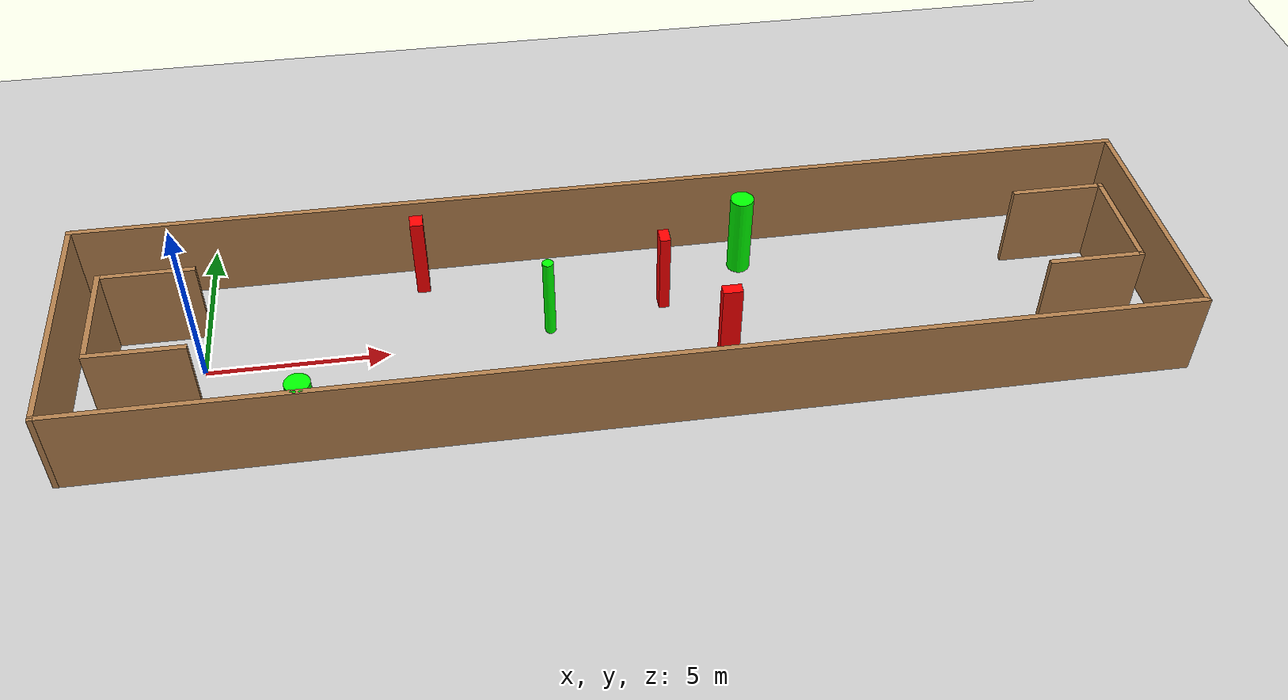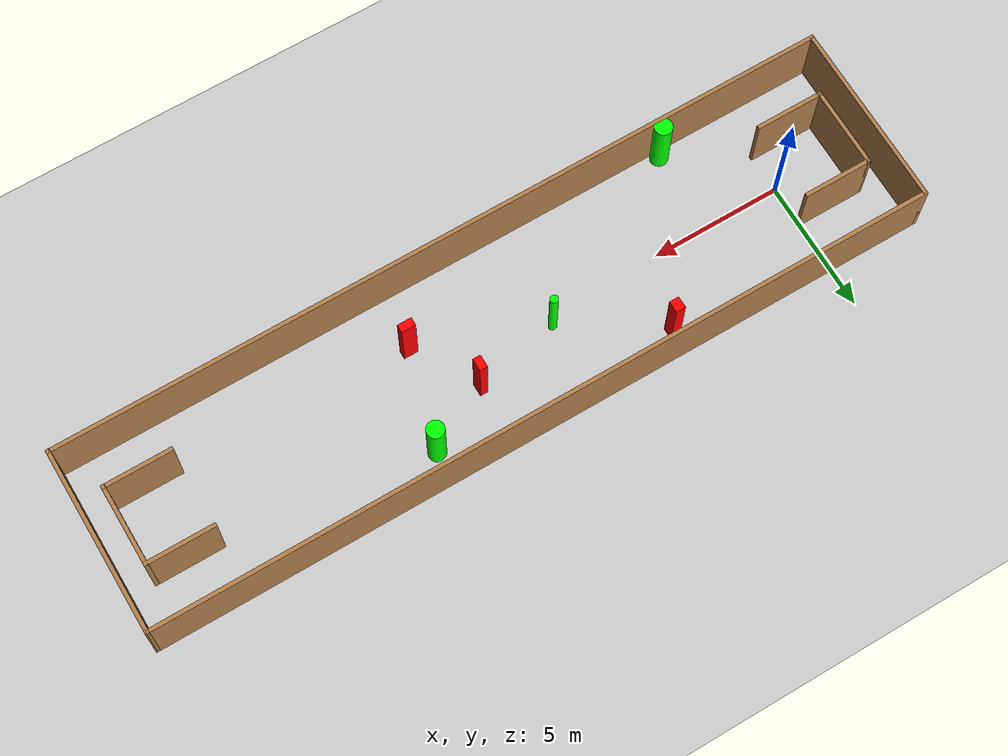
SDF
<sdf version="1.7">
 <world name="default">
  <light name="sun" type="directional">
   <pose>0 0 10 0 -0 0</pose>
   <diffuse>0.8 0.8 0.8 1</diffuse>
   <specular>0.2 0.2 0.2 1</specular>
   <attenuation>
    <range>1000</range>
    <constant>0.9</constant>
    <linear>0.01</linear>
    <quadratic>0.001</quadratic>
   </attenuation>
   <direction>-0.5 0.1 -0.9</direction>
   <spot><inner_angle>0</inner_angle><outer_angle>0</outer_angle><falloff>0</falloff></spot>
  </light>
  <model name="ground_plane">
   <static>1</static>
   <link name="link">
    <collision name="collision">
     <geometry><plane><normal>0 0 1</normal><size>100 100</size></plane></geometry>
     <surface>
      <contact><collide_bitmask>65535</collide_bitmask></contact>
      <friction><ode><mu>100</mu><mu2>50</mu2></ode></friction>
     </surface>
    </collision>
    <visual name="visual">
     <cast_shadows>0</cast_shadows>
     <geometry><plane><normal>0 0 1</normal><size>100 100</size></plane></geometry>
     <material>
      <script><uri>file://media/materials/scripts/gazebo.material</uri><name>Gazebo/Grey</name></script>
     </material>
    </visual>
   </link>
  </model>
  <gravity>0 0 -9.8</gravity>
  <magnetic_field>6e-06 2.3e-05 -4.2e-05</magnetic_field>
  <atmosphere type="adiabatic"/>
  <physics type="ode">
   <max_step_size>0.001</max_step_size>
   <real_time_factor>1</real_time_factor>
   <real_time_update_rate>1000</real_time_update_rate>
  </physics>
  <scene><ambient>0.4 0.4 0.4 1</ambient><background>0.7 0.7 0.7 1</background><shadows>1</shadows></scene>
  <spherical_coordinates>
   <surface_model>EARTH_WGS84</surface_model>
   <latitude_deg>0</latitude_deg>
   <longitude_deg>0</longitude_deg>
   <elevation>0</elevation>
   <heading_deg>0</heading_deg>
  </spherical_coordinates>
  <model name="my_base_walls">
   <link name="Wall_0">
    <collision name="Wall_0_Collision">
     <geometry><box><size>7.15 0.15 2.5</size></box></geometry>
     <pose>0 0 1.25 0 -0 0</pose>
    </collision>
    <visual name="Wall_0_Visual">
     <pose>0 0 1.25 0 -0 0</pose>
     <geometry><box><size>7.15 0.15 2.5</size></box></geometry>
     <material>
      <script><uri>file://media/materials/scripts/gazebo.material</uri><name>Gazebo/Wood</name></script>
      <ambient>1 1 1 1</ambient>
     </material>
     <meta><layer>0</layer></meta>
    </visual>
    <pose>-15 0 0 0 -0 1.5708</pose>
   </link>
   <link name="Wall_10">
    <collision name="Wall_10_Collision">
     <geometry><box><size>2.65 0.15 2.5</size></box></geometry>
     <pose>0 0 1.25 0 -0 0</pose>
    </collision>
    <visual name="Wall_10_Visual">
     <pose>0 0 1.25 0 -0 0</pose>
     <geometry><box><size>2.65 0.15 2.5</size></box></geometry>
     <material>
      <script><uri>file://media/materials/scripts/gazebo.material</uri><name>Gazebo/Wood</name></script>
      <ambient>1 1 1 1</ambient>
     </material>
     <meta><layer>0</layer></meta>
    </visual>
    <pose>-12.75 -1.5 0 0 -0 0</pose>
   </link>
   <link name="Wall_12">
    <collision name="Wall_12_Collision">
     <geometry><box><size>2.65 0.15 2.5</size></box></geometry>
     <pose>0 0 1.25 0 -0 0</pose>
    </collision>
    <visual name="Wall_12_Visual">
     <pose>0 0 1.25 0 -0 0</pose>
     <geometry><box><size>2.65 0.15 2.5</size></box></geometry>
     <material>
      <script><uri>file://media/materials/scripts/gazebo.material</uri><name>Gazebo/Wood</name></script>
      <ambient>1 1 1 1</ambient>
     </material>
     <meta><layer>0</layer></meta>
    </visual>
    <pose>-12.75 1.5 0 0 -0 0</pose>
   </link>
   <link name="Wall_14">
    <collision name="Wall_14_Collision">
     <geometry><box><size>3.15 0.15 2.5</size></box></geometry>
     <pose>0 0 1.25 0 -0 0</pose>
    </collision>
    <visual name="Wall_14_Visual">
     <pose>0 0 1.25 0 -0 0</pose>
     <geometry><box><size>3.15 0.15 2.5</size></box></geometry>
     <material>
      <script><uri>file://media/materials/scripts/gazebo.material</uri><name>Gazebo/Wood</name></script>
      <ambient>1 1 1 1</ambient>
     </material>
     <meta><layer>0</layer></meta>
    </visual>
    <pose>14 0 0 0 -0 -1.5708</pose>
   </link>
   <link name="Wall_15">
    <collision name="Wall_15_Collision">
     <geometry><box><size>2.65 0.15 2.5</size></box></geometry>
     <pose>0 0 1.25 0 -0 0</pose>
    </collision>
    <visual name="Wall_15_Visual">
     <pose>0 0 1.25 0 -0 0</pose>
     <geometry><box><size>2.65 0.15 2.5</size></box></geometry>
     <material>
      <script><uri>file://media/materials/scripts/gazebo.material</uri><name>Gazebo/Wood</name></script>
      <ambient>1 1 1 1</ambient>
     </material>
     <meta><layer>0</layer></meta>
    </visual>
    <pose>12.75 -1.5 0 0 -0 3.14159</pose>
   </link>
   <link name="Wall_17">
    <collision name="Wall_17_Collision">
     <geometry><box><size>2.65 0.15 2.5</size></box></geometry>
     <pose>0 0 1.25 0 -0 0</pose>
    </collision>
    <visual name="Wall_17_Visual">
     <pose>0 0 1.25 0 -0 0</pose>
     <geometry><box><size>2.65 0.15 2.5</size></box></geometry>
     <material>
      <script><uri>file://media/materials/scripts/gazebo.material</uri><name>Gazebo/Wood</name></script>
      <ambient>1 1 1 1</ambient>
     </material>
     <meta><layer>0</layer></meta>
    </visual>
    <pose>12.75 1.5 0 0 -0 3.14159</pose>
   </link>
   <link name="Wall_2">
    <collision name="Wall_2_Collision">
     <geometry><box><size>30.15 0.15 2.5</size></box></geometry>
     <pose>0 0 1.25 0 -0 0</pose>
    </collision>
    <visual name="Wall_2_Visual">
     <pose>0 0 1.25 0 -0 0</pose>
     <geometry><box><size>30.15 0.15 2.5</size></box></geometry>
     <material>
      <script><uri>file://media/materials/scripts/gazebo.material</uri><name>Gazebo/Wood</name></script>
      <ambient>1 1 1 1</ambient>
     </material>
     <meta><layer>0</layer></meta>
    </visual>
    <pose>-0 -3.5 0 0 -0 0</pose>
   </link>
   <link name="Wall_4">
    <collision name="Wall_4_Collision">
     <geometry><box><size>30.15 0.15 2.5</size></box></geometry>
     <pose>0 0 1.25 0 -0 0</pose>
    </collision>
    <visual name="Wall_4_Visual">
     <pose>0 0 1.25 0 -0 0</pose>
     <geometry><box><size>30.15 0.15 2.5</size></box></geometry>
     <material>
      <script><uri>file://media/materials/scripts/gazebo.material</uri><name>Gazebo/Wood</name></script>
      <ambient>1 1 1 1</ambient>
     </material>
     <meta><layer>0</layer></meta>
    </visual>
    <pose>-0 3.5 0 0 -0 0</pose>
   </link>
   <link name="Wall_6">
    <collision name="Wall_6_Collision">
     <geometry><box><size>7.15 0.15 2.5</size></box></geometry>
     <pose>0 0 1.25 0 -0 0</pose>
    </collision>
    <visual name="Wall_6_Visual">
     <pose>0 0 1.25 0 -0 0</pose>
     <geometry><box><size>7.15 0.15 2.5</size></box></geometry>
     <material>
      <script><uri>file://media/materials/scripts/gazebo.material</uri><name>Gazebo/Wood</name></script>
      <ambient>1 1 1 1</ambient>
     </material>
     <meta><layer>0</layer></meta>
    </visual>
    <pose>15 0 0 0 -0 -1.5708</pose>
   </link>
   <link name="Wall_9">
    <collision name="Wall_9_Collision">
     <geometry><box><size>3.15 0.15 2.5</size></box></geometry>
     <pose>0 0 1.25 0 -0 0</pose>
    </collision>
    <visual name="Wall_9_Visual">
     <pose>0 0 1.25 0 -0 0</pose>
     <geometry><box><size>3.15 0.15 2.5</size></box></geometry>
     <material>
      <script><uri>file://media/materials/scripts/gazebo.material</uri><name>Gazebo/Wood</name></script>
      <ambient>1 1 1 1</ambient>
     </material>
     <meta><layer>0</layer></meta>
    </visual>
    <pose>-14 0 0 0 -0 -1.5708</pose>
   </link>
   <static>1</static>
   <pose>11.5 0 0 0 -0 0</pose>
  </model>
  <model name="cylinder1">
   <static>1</static>
   <link name="link">
    <inertial>
     <mass>1</mass>
     <inertia><ixx>0.5</ixx><ixy>0</ixy><ixz>0</ixz><iyy>0.5</iyy><iyz>0</iyz><izz>1</izz></inertia>
    </inertial>
    <collision name="collision">
     <geometry><cylinder><radius>0.3385128484883736</radius><length>2.5</length></cylinder></geometry>
    </collision>
    <visual name="visual">
     <geometry><cylinder><radius>0.3385128484883736</radius><length>2.5</length></cylinder></geometry>
     <material>
      <ambient>0 1 0 1</ambient>
      <diffuse>0 1 0 1</diffuse>
      <specular>0.1 0.1 0.1 1</specular>
      <emissive>0 0 0 0</emissive>
     </material>
    </visual>
   </link>
   <pose>2.8678926813978034 -3.1993949877517958 1.25 0 0 0</pose>
  </model>
  <model name="cylinder2">
   <static>1</static>
   <link name="link">
    <inertial>
     <mass>1</mass>
     <inertia><ixx>0.5</ixx><ixy>0</ixy><ixz>0</ixz><iyy>0.5</iyy><iyz>0</iyz><izz>1</izz></inertia>
    </inertial>
    <collision name="collision">
     <geometry><cylinder><radius>0.32962382495434045</radius><length>2.5</length></cylinder></geometry>
    </collision>
    <visual name="visual">
     <geometry><cylinder><radius>0.32962382495434045</radius><length>2.5</length></cylinder></geometry>
     <material>
      <ambient>0 1 0 1</ambient>
      <diffuse>0 1 0 1</diffuse>
      <specular>0.1 0.1 0.1 1</specular>
      <emissive>0 0 0 0</emissive>
     </material>
    </visual>
   </link>
   <pose>15.219904886231697 2.3238222873457817 1.25 0 0 0</pose>
  </model>
  <model name="cylinder3">
   <static>1</static>
   <link name="link">
    <inertial>
     <mass>1</mass>
     <inertia><ixx>0.5</ixx><ixy>0</ixy><ixz>0</ixz><iyy>0.5</iyy><iyz>0</iyz><izz>1</izz></inertia>
    </inertial>
    <collision name="collision">
     <geometry><cylinder><radius>0.15576484422136375</radius><length>2.5</length></cylinder></geometry>
    </collision>
    <visual name="visual">
     <geometry><cylinder><radius>0.15576484422136375</radius><length>2.5</length></cylinder></geometry>
     <material>
      <ambient>0 1 0 1</ambient>
      <diffuse>0 1 0 1</diffuse>
      <specular>0.1 0.1 0.1 1</specular>
      <emissive>0 0 0 0</emissive>
     </material>
    </visual>
   </link>
   <pose>9.473101987185123 0.3724066985833443 1.25 0 0 0</pose>
  </model>
  <model name="box1">
   <static>1</static>
   <link name="link">
    <inertial>
     <mass>1</mass>
     <inertia><ixx>0.083</ixx><ixy>0</ixy><ixz>0</ixz><iyy>0.083</iyy><iyz>0</iyz><izz>0.083</izz></inertia>
    </inertial>
    <collision name="collision">
     <geometry><box><size>0.36762468529690784 0.44714153191590594 2.5</size></box></geometry>
    </collision>
    <visual name="visual">
     <geometry><box><size>0.36762468529690784 0.44714153191590594 2.5</size></box></geometry>
     <material>
      <ambient>1 0 0 1</ambient>
      <diffuse>1 0 0 1</diffuse>
      <specular>0.1 0.1 0.1 1</specular>
      <emissive>0 0 0 0</emissive>
     </material>
    </visual>
    <sensor name="my_contact" type="contact">
     <contact><collision>box_collision</collision><topic>__default_topic__</topic></contact>
    </sensor>
   </link>
   <pose>6.018499089260867 2.661641963892799 1.25 0 0 0</pose>
  </model>
  <model name="box2">
   <static>1</static>
   <link name="link">
    <inertial>
     <mass>1</mass>
     <inertia><ixx>0.083</ixx><ixy>0</ixy><ixz>0</ixz><iyy>0.083</iyy><iyz>0</iyz><izz>0.083</izz></inertia>
    </inertial>
    <collision name="collision">
     <geometry><box><size>0.29530993517489135 0.4827370213897475 2.5</size></box></geometry>
    </collision>
    <visual name="visual">
     <geometry><box><size>0.29530993517489135 0.4827370213897475 2.5</size></box></geometry>
     <material>
      <ambient>1 0 0 1</ambient>
      <diffuse>1 0 0 1</diffuse>
      <specular>0.1 0.1 0.1 1</specular>
      <emissive>0 0 0 0</emissive>
     </material>
    </visual>
    <sensor name="my_contact" type="contact">
     <contact><collision>box_collision</collision><topic>__default_topic__</topic></contact>
    </sensor>
   </link>
   <pose>12.773667842168534 1.0714414016528044 1.25 0 0 0</pose>
  </model>
  <model name="box3">
   <static>1</static>
   <link name="link">
    <inertial>
     <mass>1</mass>
     <inertia><ixx>0.083</ixx><ixy>0</ixy><ixz>0</ixz><iyy>0.083</iyy><iyz>0</iyz><izz>0.083</izz></inertia>
    </inertial>
    <collision name="collision">
     <geometry><box><size>0.5450770571041246 0.3139218729504577 2.5</size></box></geometry>
    </collision>
    <visual name="visual">
     <geometry><box><size>0.5450770571041246 0.3139218729504577 2.5</size></box></geometry>
     <material>
      <ambient>1 0 0 1</ambient>
      <diffuse>1 0 0 1</diffuse>
      <specular>0.1 0.1 0.1 1</specular>
      <emissive>0 0 0 0</emissive>
     </material>
    </visual>
    <sensor name="my_contact" type="contact">
     <contact><collision>box_collision</collision><topic>__default_topic__</topic></contact>
    </sensor>
   </link>
   <pose>14.208584871736699 -1.345156159864029 1.25 0 0 0</pose>
  </model>
 </world>
</sdf>
